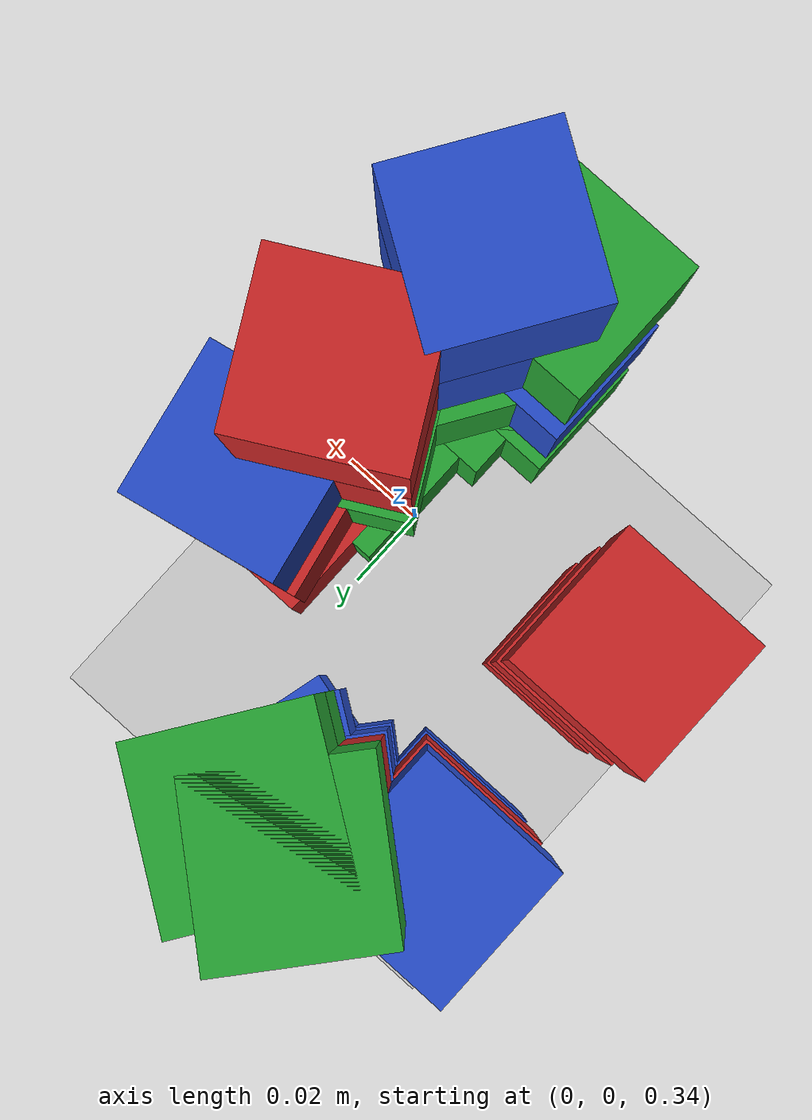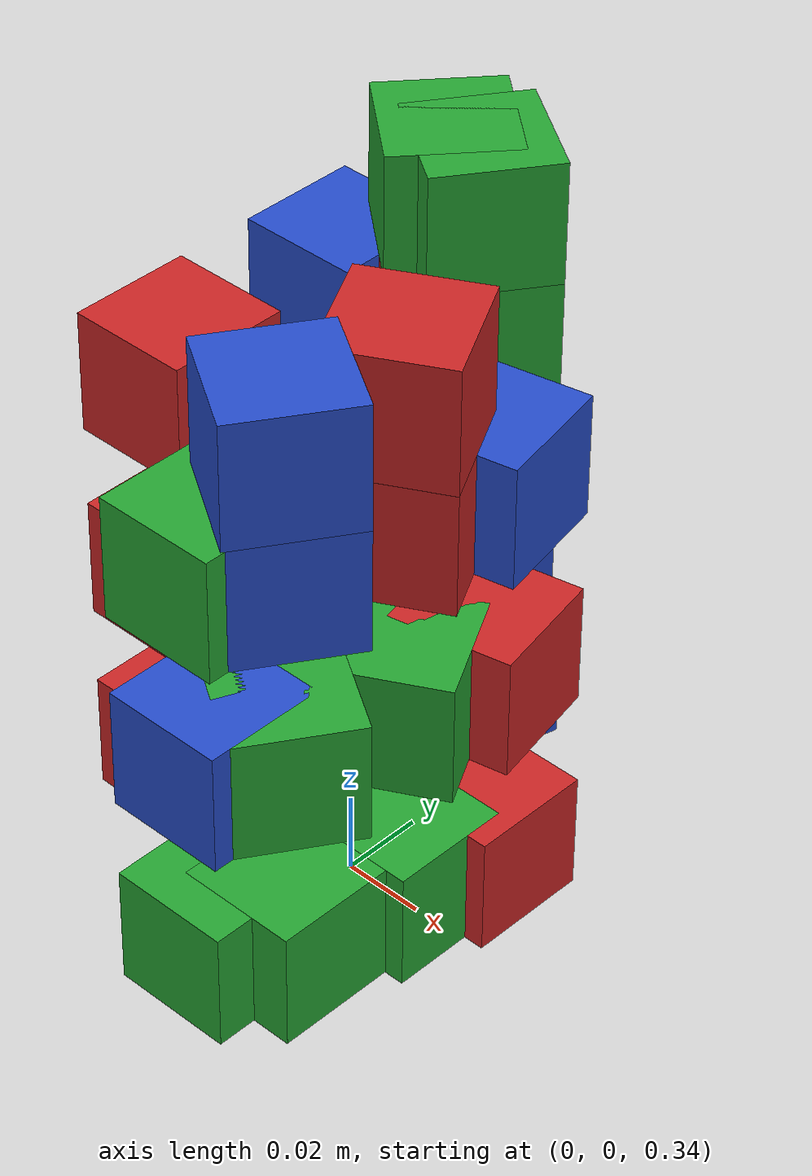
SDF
<sdf version="1.5">
 <world name="default">
  <plugin name="ros_link_attacher_plugin" filename="libgazebo_ros_link_attacher.so"/>
  <gravity>0 0 -9.8</gravity>
  <physics default="0" name="default_physics" type="ode">
   <max_step_size>0.001</max_step_size>
   <real_time_factor>1</real_time_factor>
   <real_time_update_rate>1000</real_time_update_rate>
  </physics>
  <include><uri>model://ground_plane</uri></include>
  <include><uri>model://sun</uri></include>
  <model name="red_package_1">
   <include><uri>model://package_red</uri><pose>-0.05 0.0 0.35 0.0 0.0 0.0</pose><static>false</static></include>
  </model>
  <model name="green_package_1">
   <include>
    <uri>model://package_green</uri>
    <pose>0.0 -0.04 0.35 0.0 0.0 0.0</pose>
    <static>false</static>
   </include>
  </model>
  <model name="blue_package_1">
   <include>
    <uri>model://package_blue</uri>
    <pose>-0.05 0.05 0.35 0.0 0.0 0.0</pose>
    <static>false</static>
   </include>
  </model>
  <model name="green_package_2">
   <include>
    <uri>model://package_green</uri>
    <pose>0.01 -0.03 0.35 0.0 0.0 0.0</pose>
    <static>false</static>
   </include>
  </model>
  <model name="blue_package_2">
   <include>
    <uri>model://package_blue</uri>
    <pose>-0.03 0.06 0.35 0.0 0.0 -0.7</pose>
    <static>false</static>
   </include>
  </model>
  <model name="red_package_3">
   <include><uri>model://package_red</uri><pose>0.02 0.02 0.35 0.0 0.0 0.0</pose><static>false</static></include>
  </model>
  <model name="green_package_3">
   <include>
    <uri>model://package_green</uri>
    <pose>0.015 0.0 0.35 0.0 0.0 0.0</pose>
    <static>false</static>
   </include>
  </model>
  <model name="blue_package_3">
   <include>
    <uri>model://package_blue</uri>
    <pose>-0.02 0.06 0.35 0.0 0.0 -0.25</pose>
    <static>false</static>
   </include>
  </model>
  <model name="red_package_4">
   <include><uri>model://package_red</uri><pose>-0.05 0.0 0.4 0.0 0.0 0.0</pose><static>false</static></include>
  </model>
  <model name="green_package_4">
   <include><uri>model://package_blue</uri><pose>0.0 -0.04 0.4 0.0 0.0 0.0</pose><static>false</static></include>
  </model>
  <model name="blue_package_4">
   <include><uri>model://package_red</uri><pose>-0.05 0.05 0.4 0.0 0.0 0.0</pose><static>false</static></include>
  </model>
  <model name="green_package_5">
   <include>
    <uri>model://package_green</uri>
    <pose>0.01 -0.03 0.4 0.0 0.0 1.0</pose>
    <static>false</static>
   </include>
  </model>
  <model name="blue_package_5">
   <include>
    <uri>model://package_blue</uri>
    <pose>-0.03 0.06 0.4 0.0 0.0 -0.7</pose>
    <static>false</static>
   </include>
  </model>
  <model name="red_package_6">
   <include><uri>model://package_red</uri><pose>0.02 0.02 0.4 0.0 0.0 0.2</pose><static>false</static></include>
  </model>
  <model name="green_package_6">
   <include>
    <uri>model://package_green</uri>
    <pose>0.015 0.0 0.4 0.0 0.0 0.5</pose>
    <static>false</static>
   </include>
  </model>
  <model name="blue_package_6">
   <include>
    <uri>model://package_blue</uri>
    <pose>-0.02 0.06 0.4 0.0 0.0 -0.6</pose>
    <static>false</static>
   </include>
  </model>
  <model name="red_package_7">
   <include><uri>model://package_red</uri><pose>-0.05 0.0 0.45 0.0 0.0 0.0</pose><static>false</static></include>
  </model>
  <model name="green_package_7">
   <include>
    <uri>model://package_green</uri>
    <pose>0.0 -0.04 0.45 0.0 0.0 0.0</pose>
    <static>false</static>
   </include>
  </model>
  <model name="blue_package_7">
   <include>
    <uri>model://package_blue</uri>
    <pose>-0.05 0.05 0.45 0.0 0.0 0.0</pose>
    <static>false</static>
   </include>
  </model>
  <model name="green_package_8">
   <include>
    <uri>model://package_blue</uri>
    <pose>0.01 -0.03 0.45 0.0 0.0 1.0</pose>
    <static>false</static>
   </include>
  </model>
  <model name="blue_package_8">
   <include>
    <uri>model://package_red</uri>
    <pose>-0.03 0.06 0.45 0.0 0.0 -0.7</pose>
    <static>false</static>
   </include>
  </model>
  <model name="red_package_9">
   <include>
    <uri>model://package_blue</uri>
    <pose>0.02 0.02 0.45 0.0 0.0 0.2</pose>
    <static>false</static>
   </include>
  </model>
  <model name="green_package_9">
   <include><uri>model://package_red</uri><pose>0.015 0.0 0.45 0.0 0.0 0.5</pose><static>false</static></include>
  </model>
  <model name="blue_package_9">
   <include>
    <uri>model://package_green</uri>
    <pose>-0.02 0.06 0.45 0.0 0.0 -0.6</pose>
    <static>false</static>
   </include>
  </model>
  <model name="red_package_10">
   <include>
    <uri>model://package_blue</uri>
    <pose>-0.05 0.0 0.45 0.0 0.0 0.0</pose>
    <static>false</static>
   </include>
  </model>
  <model name="green_package_10">
   <include>
    <uri>model://package_blue</uri>
    <pose>0.0 -0.04 0.45 0.0 0.0 0.0</pose>
    <static>false</static>
   </include>
  </model>
  <model name="blue_package_10">
   <include>
    <uri>model://package_green</uri>
    <pose>-0.05 0.05 0.45 0.0 0.0 0.0</pose>
    <static>false</static>
   </include>
  </model>
  <model name="green_package_11">
   <include>
    <uri>model://package_blue</uri>
    <pose>0.01 -0.03 0.48 0.0 0.0 1.0</pose>
    <static>false</static>
   </include>
  </model>
  <model name="blue_package_11">
   <include>
    <uri>model://package_green</uri>
    <pose>-0.03 0.06 0.48 0.0 0.0 -0.7</pose>
    <static>false</static>
   </include>
  </model>
  <model name="red_package_12">
   <include><uri>model://package_red</uri><pose>0.02 0.02 0.45 0.0 0.0 0.2</pose><static>false</static></include>
  </model>
  <model name="green_package_12">
   <include><uri>model://package_red</uri><pose>0.015 0.0 0.48 0.0 0.0 0.5</pose><static>false</static></include>
  </model>
  <model name="blue_package_12">
   <include>
    <uri>model://package_green</uri>
    <pose>-0.02 0.06 0.48 0.0 0.0 -0.6</pose>
    <static>false</static>
   </include>
  </model>
 </world>
</sdf>

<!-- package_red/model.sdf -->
<sdf version='1.4'>
  <model name='package_red'>
    <link name='link'>
      <inertial>
        <mass>0.01</mass>
        <inertia>
          <ixx>0.000004167</ixx>
          <ixy>0</ixy>
          <ixz>0</ixz>
          <iyy>0.000004167</iyy>
          <iyz>0</iyz>
          <izz>0.000004167</izz>
      </inertia>
        <pose frame=''>0 0 0 0 -0 0</pose>
      </inertial>
      <self_collide>0</self_collide>
      <enable_wind>0</enable_wind>
      <kinematic>0</kinematic>
      <pose frame=''>0 0 0 0 -0 0</pose>
      <visual name='visual'>
        <geometry>
          <box>
            <size>0.03 0.03 0.03</size>
          </box>
        </geometry>
        <material>
          <script>
            <name>Gazebo/Red</name>
            <uri>file://media/materials/scripts/gazebo.material</uri>
          </script>
          <shader type='pixel'/>
        </material>
        <pose frame=''>0 0 0 0 -0 0</pose>
        <transparency>0</transparency>
        <cast_shadows>1</cast_shadows>
      </visual>
      <collision name='collision'>
        <laser_retro>0</laser_retro>
        <max_contacts>10</max_contacts>
        <pose frame=''>0 0 0 0 -0 0</pose>
        <geometry>
          <box>
            <size>0.03 0.03 0.03</size>
          </box>
        </geometry>
        <surface>
          <friction>
            <ode>
              <mu>10</mu>
              <mu2>10</mu2>
              <fdir1>0 0 0</fdir1>
              <slip1>0</slip1>
              <slip2>0</slip2>
            </ode>
            <torsional>
              <coefficient>1</coefficient>
              <patch_radius>0</patch_radius>
              <surface_radius>0</surface_radius>
              <use_patch_radius>1</use_patch_radius>
              <ode>
                <slip>0</slip>
              </ode>
            </torsional>
          </friction>
          <bounce>
            <restitution_coefficient>0</restitution_coefficient>
            <threshold>1e+06</threshold>
          </bounce>
          <contact>
            <collide_without_contact>0</collide_without_contact>
            <collide_without_contact_bitmask>1</collide_without_contact_bitmask>
            <collide_bitmask>1</collide_bitmask>
            <ode>
              <soft_cfm>0</soft_cfm>
              <soft_erp>0.2</soft_erp>
              <kp>1e+13</kp>
              <kd>1</kd>
              <max_vel>0.01</max_vel>
              <min_depth>0</min_depth>
            </ode>
            <bullet>
              <split_impulse>1</split_impulse>
              <split_impulse_penetration_threshold>-0.01</split_impulse_penetration_threshold>
              <soft_cfm>0</soft_cfm>
              <soft_erp>0.2</soft_erp>
              <kp>1e+13</kp>
              <kd>1</kd>
            </bullet>
          </contact>
        </surface>
      </collision>
    </link>
    <static>0</static>
    <allow_auto_disable>1</allow_auto_disable>
  </model>
</sdf>

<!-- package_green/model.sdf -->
<sdf version='1.6'>
  <model name='package_green'>
    <link name='link'>
      <inertial>
        <mass>0.01</mass>
        <inertia>
          <ixx>0.000004167</ixx>
          <ixy>0</ixy>
          <ixz>0</ixz>
          <iyy>0.000004167</iyy>
          <iyz>0</iyz>
          <izz>0.000004167</izz>
        </inertia>
        <pose frame=''>0 0 0 0 -0 0</pose>
      </inertial>
      <velocity_decay>
        <linear>0</linear>
        <angular>0</angular>
      </velocity_decay>
      <self_collide>0</self_collide>
      <kinematic>0</kinematic>
      <gravity>1</gravity>
      <enable_wind>0</enable_wind>
      <pose frame=''>0 0 0 0 -0 0</pose>
      <visual name='stairs_visual0'>
        <geometry>
         <box>
           <size>0.03 0.03 0.03</size>
         </box>
        </geometry>
        <material>
          <script>
            <name>Gazebo/Green</name>
            <uri>file://media/materials/scripts/gazebo.material</uri>
          </script>
        </material>
        <pose frame=''>0 0 0 0 -0 0</pose>
        <transparency>0</transparency>
        <cast_shadows>1</cast_shadows>
      </visual>
      <collision name='stairs_collision0'>
        <laser_retro>0</laser_retro>
        <max_contacts>10</max_contacts>
        <pose frame=''>0 0 0 0 -0 0</pose>
        <geometry>
          <box>
            <size>0.03 0.03 0.03</size>
          </box>
        </geometry>
        <surface>
          <friction>
            <ode>
              <mu>10</mu>
              <mu2>10</mu2>
              <fdir1>0 0 0</fdir1>
              <slip1>0</slip1>
              <slip2>0</slip2>
            </ode>
            <torsional>
              <coefficient>1</coefficient>
              <patch_radius>0</patch_radius>
              <surface_radius>0</surface_radius>
              <use_patch_radius>1</use_patch_radius>
              <ode>
                <slip>0</slip>
              </ode>
            </torsional>
          </friction>
          <bounce>
            <restitution_coefficient>0</restitution_coefficient>
            <threshold>1e+06</threshold>
          </bounce>
          <contact>
            <collide_without_contact>0</collide_without_contact>
            <collide_without_contact_bitmask>1</collide_without_contact_bitmask>
            <collide_bitmask>1</collide_bitmask>
            <ode>
              <soft_cfm>0</soft_cfm>
              <soft_erp>0.2</soft_erp>
              <kp>1e+07</kp>
              <kd>1</kd>
              <max_vel>0</max_vel>
              <min_depth>0</min_depth>
            </ode>
            <bullet>
              <split_impulse>1</split_impulse>
              <split_impulse_penetration_threshold>-0.01</split_impulse_penetration_threshold>
              <soft_cfm>0</soft_cfm>
              <soft_erp>0.2</soft_erp>
              <kp>1e+07</kp>
              <kd>1</kd>
            </bullet>
          </contact>
        </surface>
      </collision>
    </link>
    <static>0</static>
    <allow_auto_disable>1</allow_auto_disable>
  </model>
</sdf>

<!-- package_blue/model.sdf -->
<sdf version='1.4'>
  <model name='package_blue'>
    <link name='link'>
       <inertial>
        <mass>0.01</mass>
        <inertia>
          <ixx>0.000004167</ixx>
          <ixy>0</ixy>
          <ixz>0</ixz>
          <iyy>0.000004167</iyy>
          <iyz>0</iyz>
          <izz>0.000004167</izz>
        </inertia>
        <pose frame=''>0 0 0 0 -0 0</pose>
      </inertial>
      <self_collide>0</self_collide>
      <enable_wind>0</enable_wind>
      <gravity>1</gravity>
      <kinematic>0</kinematic>
      <pose frame=''>0 0 0 0 -0 0</pose>
      <visual name='visual'>
        <geometry>
          <box>
            <size>0.03 0.03 0.03</size>
          </box>
        </geometry>
        <material>
          <script>
            <name>Gazebo/Blue</name>
            <uri>file://media/materials/scripts/gazebo.material</uri>
          </script>
          <shader type='pixel'/>
        </material>
        <pose frame=''>0 0 0 0 -0 0</pose>
        <transparency>0</transparency>
        <cast_shadows>1</cast_shadows>
      </visual>
      <collision name='collision'>
        <laser_retro>0</laser_retro>
        <max_contacts>10</max_contacts>
        <pose frame=''>0 0 0 0 -0 0</pose>
        <geometry>
          <box>
            <size>0.03 0.03 0.03</size>
          </box>
        </geometry>
        <surface>
          <friction>
            <ode>
              <mu>10</mu>
              <mu2>10</mu2>
              <fdir1>0 0 0</fdir1>
              <slip1>0</slip1>
              <slip2>0</slip2>
            </ode>
            <torsional>
              <coefficient>1</coefficient>
              <patch_radius>0</patch_radius>
              <surface_radius>0</surface_radius>
              <use_patch_radius>1</use_patch_radius>
              <ode>
                <slip>0</slip>
              </ode>
            </torsional>
          </friction>
          <bounce>
            <restitution_coefficient>0</restitution_coefficient>
            <threshold>1e+06</threshold>
          </bounce>
          <contact>
            <collide_without_contact>0</collide_without_contact>
            <collide_without_contact_bitmask>1</collide_without_contact_bitmask>
            <collide_bitmask>1</collide_bitmask>
            <ode>
              <soft_cfm>0</soft_cfm>
              <soft_erp>0.2</soft_erp>
              <kp>1e+07</kp>
              <kd>1</kd>
              <max_vel>0</max_vel>
              <min_depth>0</min_depth>
            </ode>
            <bullet>
              <split_impulse>1</split_impulse>
              <split_impulse_penetration_threshold>-0.01</split_impulse_penetration_threshold>
              <soft_cfm>0</soft_cfm>
              <soft_erp>0.2</soft_erp>
              <kp>1e+07</kp>
              <kd>1</kd>
            </bullet>
          </contact>
        </surface>
      </collision>
    </link>
    <static>0</static>
    <allow_auto_disable>1</allow_auto_disable>
  </model>
</sdf>
